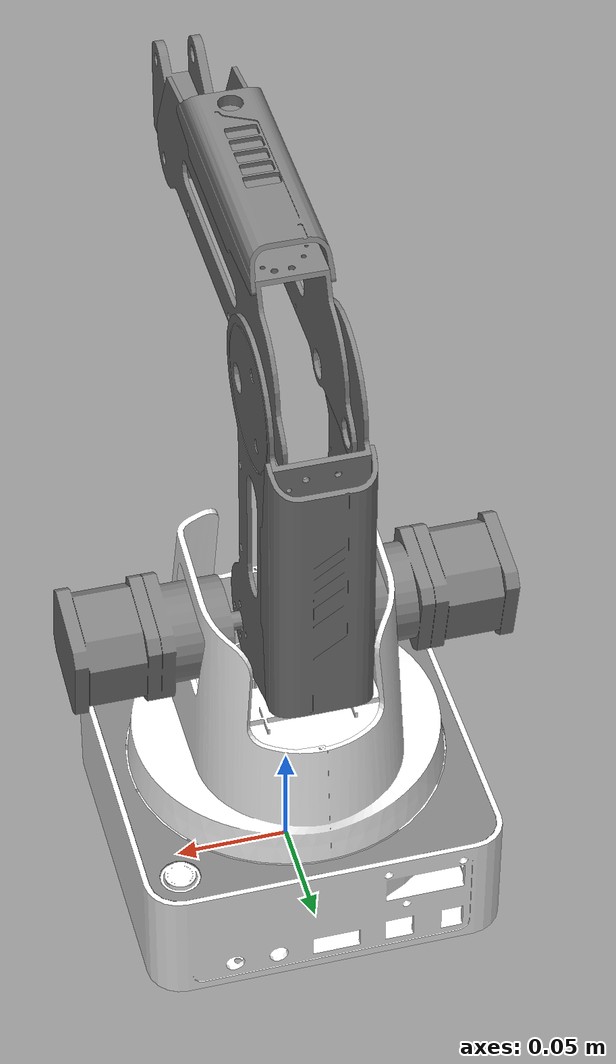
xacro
<?xml version="1.0" encoding="utf-8"?>
<robot
  name="magician" xmlns:xacro="http://www.ros.org/wiki/xacro">

  <xacro:include filename="$(find magician_description)/urdf/magician.gazebo" />

  <xacro:include filename="$(find magician_description)/urdf/magician_transmission.xacro" />

  <xacro:property name="joint1_lower" value="-2.1816"/>
  <xacro:property name="joint1_upper" value="2.1816"/>
  <xacro:property name="joint2_lower" value="-0.35"/>
  <xacro:property name="joint2_upper" value="1.57"/>
  <xacro:property name="joint3_lower" value="-0.62"/>
  <xacro:property name="joint3_upper" value="1.57"/>
  <xacro:property name="joint_velocity" value="1.57"/> <!-- rad/s   ???? -->

  <link name="world"/>
  <joint
    name="world_joint"
    type="fixed">
    <origin
      xyz="0 0 0"
      rpy="0 0 0" />
    <parent
      link="world" />
    <child
      link="magician_base" />
    <axis
      xyz="0 0 0" />
  </joint>
  <link
    name="magician_base">
    <inertial>
      <origin
        xyz="-0.00035432 -0.00080566 0.023187"
        rpy="0 0 0" />
      <mass
        value="0.23009" />
      <inertia
        ixx="0.00065784"
        ixy="-4.8312E-06"
        ixz="1.2493E-06"
        iyy="0.00069673"
        iyz="4.3823E-07"
        izz="0.0012945" />
    </inertial>
    <visual>
      <origin
        xyz="0 0 0"
        rpy="0 0 0" />
      <geometry>
        <mesh
          filename="package://magician_description/meshes/magician_base.STL" />
      </geometry>
      <material
        name="">
        <color
          rgba="1 1 1 1" />
      </material>
    </visual>
    <collision>
      <origin
        xyz="0 0 0"
        rpy="0 0 0" />
      <geometry>
        <mesh
          filename="package://magician_description/meshes/magician_base.STL" />
      </geometry>
    </collision>
  </link>
  <link
    name="magician_link1">
    <inertial>
      <origin
        xyz="0.00024809 -0.00074864 0.040762"
        rpy="0 0 0" />
      <mass
        value="0.081469" />
      <inertia
        ixx="0.00020859"
        ixy="8.163E-08"
        ixz="4.6298E-07"
        iyy="9.5838E-05"
        iyz="3.2246E-06"
        izz="0.00015246" />
    </inertial>
    <visual>
      <origin
        xyz="0 0 0"
        rpy="0 0 0" />
      <geometry>
        <mesh
          filename="package://magician_description/meshes/magician_link1.STL" />
      </geometry>
      <material
        name="">
        <color
          rgba="1 1 1 1" />
      </material>
    </visual>
    <collision>
      <origin
        xyz="0 0 0"
        rpy="0 0 0" />
      <geometry>
        <mesh
          filename="package://magician_description/meshes/magician_link1.STL" />
      </geometry>
    </collision>
  </link>
  <joint
    name="magician_joint1"
    type="revolute">
    <origin
      xyz="0 0 0.0569"
      rpy="0 0 0" />
    <parent
      link="magician_base" />
    <child
      link="magician_link1" />
    <axis
      xyz="0 0 1" />
    <limit
      lower="${joint1_lower}"
      upper="${joint1_upper}"
      effort="6"
      velocity="${joint_velocity}" />
  </joint>
  <link
    name="magician_link2">
    <inertial>
      <origin
        xyz="-0.076276 0.029436 2.1815E-06"
        rpy="0 0 0" />
      <mass
        value="0.047726" />
      <inertia
        ixx="3.5818E-05"
        ixy="-4.4023E-06"
        ixz="-7.1903E-09"
        iyy="0.00014556"
        iyz="2.3353E-09"
        izz="0.00015167" />
    </inertial>
    <visual>
      <origin
        xyz="0 0 0"
        rpy="0 0 0" />
      <geometry>
        <mesh
          filename="package://magician_description/meshes/magician_link2.STL" />
      </geometry>
      <material
        name="">
        <color
          rgba="0.501960784313725 0.501960784313725 0.501960784313725 1" />
      </material>
    </visual>
    <collision>
      <origin
        xyz="0 0 0"
        rpy="0 0 0" />
      <geometry>
        <mesh
          filename="package://magician_description/meshes/magician_link2.STL" />
      </geometry>
    </collision>
  </link>
  <joint
    name="magician_joint2"
    type="revolute">
    <origin
      xyz="0 0 0.0821"
      rpy="0 1.5707963267948966 0" />
    <parent
      link="magician_link1" />
    <child
      link="magician_link2" />
    <axis
      xyz="0 0 1" />
    <limit
      lower="${joint2_lower}"
      upper="${joint2_upper}"
      effort="6"
      velocity="${joint_velocity}" />
  </joint>
  <link
    name="magician_link3">
    <inertial>
      <origin
        xyz="0.029209 -0.054163 -8.4342E-05"
        rpy="0 0 0" />
      <mass
        value="0.042983" />
      <inertia
        ixx="0.00013733"
        ixy="-9.7605E-08"
        ixz="-1.1091E-07"
        iyy="2.3432E-05"
        iyz="3.5599E-07"
        izz="0.00014558" />
    </inertial>
    <visual>
      <origin
        xyz="0 0 0"
        rpy="0 0 0" />
      <geometry>
        <mesh
          filename="package://magician_description/meshes/magician_link3.STL" />
      </geometry>
      <material
        name="">
        <color
          rgba="0.501960784313725 0.501960784313725 0.501960784313725 1" />
      </material>
    </visual>
    <collision>
      <origin
        xyz="0 0 0"
        rpy="0 0 0" />
      <geometry>
        <mesh
          filename="package://magician_description/meshes/magician_link3.STL" />
      </geometry>
    </collision>
  </link>
  <joint
    name="magician_fake_joint1"
    type="revolute">
    <origin
      xyz="-0.135 0 0"
      rpy="-3.1415926535897932 0 -3.1415926535897932" />
    <parent
      link="magician_link2" />
    <child
      link="magician_fake_link" />
    <axis
      xyz="0 0 -1" />
    <limit
      lower="${-1*joint2_upper}"
      upper="${-1*joint2_lower}"
      effort="6"
      velocity="${joint_velocity}" />
    <mimic
      joint="magician_joint2"
      multiplier="-1"
      offset="0"/>
  </joint>
  <link name="magician_fake_link">
    <inertial>
      <origin
        xyz="0 0 0"
        rpy="0 0 0" />
      <mass
        value="0.025" />
      <inertia
        ixx="2.5E-4"
        ixy="0"
        ixz="0"
        iyy="2.5E-4"
        iyz="0"
        izz="2.5E-4" />
    </inertial>
  </link>
  <joint
    name="magician_joint3"
    type="revolute">
    <origin
      xyz="0 0 0"
      rpy="0 0 0" />
    <parent
      link="magician_fake_link" />
    <child
      link="magician_link3" />
    <axis
      xyz="0 0 -1" />
    <limit
      lower="${joint3_lower}"
      upper="${joint3_upper}"
      effort="6"
      velocity="${joint_velocity}" />
  </joint>
  <link
    name="magician_link4">
    <inertial>
      <origin
        xyz="-0.019694 0.0034659 0.0001155"
        rpy="0 0 0" />
      <mass
        value="0.020564" />
      <inertia
        ixx="3.7203E-06"
        ixy="7.6009E-07"
        ixz="3.146E-08"
        iyy="4.5639E-06"
        iyz="-5.7432E-08"
        izz="6.427E-06" />
    </inertial>
    <visual>
      <origin
        xyz="0 0 0"
        rpy="0 0 0" />
      <geometry>
        <mesh
          filename="package://magician_description/meshes/magician_link4.STL" />
      </geometry>
      <material
        name="">
        <color
          rgba="0.501960784313725 0.501960784313725 0.501960784313725 1" />
      </material>
    </visual>
    <collision>
      <origin
        xyz="0 0 0"
        rpy="0 0 0" />
      <geometry>
        <mesh
          filename="package://magician_description/meshes/magician_link4.STL" />
      </geometry>
    </collision>
  </link>
  <joint
    name="magician_fake_joint2"
    type="revolute">
    <origin
      xyz="0 -0.147 0"
      rpy="3.1415926535897932 0 1.5707963267948966" />
    <parent
      link="magician_link3" />
    <child
      link="magician_link4" />
    <axis
      xyz="0 0 1" />
    <limit
      lower="${-1*joint3_upper}"
      upper="${-1*joint3_lower}"
      effort="6"
      velocity="${joint_velocity}" />
    <mimic
      joint="magician_joint3"
      multiplier="-1"
      offset="0"/>
  </joint>
  <link name="magician_arm_end"/>
  <joint
    name="magician_link4_joint1"
    type="fixed">
    <origin
      xyz="0 0 0"
      rpy="-1.5707963267948966 3.1415926535897932 0" />
    <parent
      link="magician_link4" />
    <child
      link="magician_arm_end" />
  </joint>
  <link
    name="magician_link3_surface">
    <inertial>
      <origin
        xyz="0.059385 -0.050176 -2.6308E-06"
        rpy="0 0 0" />
      <mass
        value="0.015005" />
      <inertia
        ixx="1.8842E-05"
        ixy="-3.9211E-07"
        ixz="4.9615E-10"
        iyy="3.6097E-06"
        iyz="-1.2797E-09"
        izz="1.6901E-05" />
    </inertial>
    <visual>
      <origin
        xyz="0 0 0"
        rpy="0 0 0" />
      <geometry>
        <mesh
          filename="package://magician_description/meshes/magician_link3_surface.STL" />
      </geometry>
      <material
        name="">
        <color
          rgba="0.501960784313725 0.501960784313725 0.501960784313725 1" />
      </material>
    </visual>
    <collision>
      <origin
        xyz="0 0 0"
        rpy="0 0 0" />
      <geometry>
        <mesh
          filename="package://magician_description/meshes/magician_link3_surface.STL" />
      </geometry>
    </collision>
  </link>
  <joint
    name="magician_link3_joint1"
    type="fixed">
    <origin
      xyz="0 0 0"
      rpy="0 0 0" />
    <parent
      link="magician_link3" />
    <child
      link="magician_link3_surface" />
    <axis
      xyz="0 0 0" />
  </joint>
  <link
    name="magician_link2_surface">
    <inertial>
      <origin
        xyz="-0.066726 0.060698 5.5359E-07"
        rpy="0 0 0" />
      <mass
        value="0.018846" />
      <inertia
        ixx="5.9574E-06"
        ixy="-5.1053E-08"
        ixz="3.3782E-09"
        iyy="2.8034E-05"
        iyz="-1.6336E-11"
        izz="2.3816E-05" />
    </inertial>
    <visual>
      <origin
        xyz="0 0 0"
        rpy="0 0 0" />
      <geometry>
        <mesh
          filename="package://magician_description/meshes/magician_link2_surface.STL" />
      </geometry>
      <material
        name="">
        <color
          rgba="0.501960784313725 0.501960784313725 0.501960784313725 1" />
      </material>
    </visual>
    <collision>
      <origin
        xyz="0 0 0"
        rpy="0 0 0" />
      <geometry>
        <mesh
          filename="package://magician_description/meshes/magician_link2_surface.STL" />
      </geometry>
    </collision>
  </link>
  <joint
    name="magician_link2_joint1"
    type="fixed">
    <origin
      xyz="0 0 0"
      rpy="0 0 0" />
    <parent
      link="magician_link2" />
    <child
      link="magician_link2_surface" />
    <axis
      xyz="0 0 0" />
  </joint>
  <link
    name="magician_servos">
    <inertial>
      <origin
        xyz="-3.3282E-06 0 0.0821"
        rpy="0 0 0" />
      <mass
        value="0.21777" />
      <inertia
        ixx="5.4372E-05"
        ixy="-1.467E-18"
        ixz="-1.6192E-19"
        iyy="0.00011754"
        iyz="7.4188E-21"
        izz="0.00011754" />
    </inertial>
    <visual>
      <origin
        xyz="0 0 0"
        rpy="0 0 0" />
      <geometry>
        <mesh
          filename="package://magician_description/meshes/magician_servos.STL" />
      </geometry>
      <material
        name="">
        <color
          rgba="0.501960784313725 0.501960784313725 0.501960784313725 1" />
      </material>
    </visual>
    <collision>
      <origin
        xyz="0 0 0"
        rpy="0 0 0" />
      <geometry>
        <mesh
          filename="package://magician_description/meshes/magician_servos.STL" />
      </geometry>
    </collision>
  </link>
  <joint
    name="magician_link1_joint1"
    type="fixed">
    <origin
      xyz="0 0 0"
      rpy="0 0 0" />
    <parent
      link="magician_link1" />
    <child
      link="magician_servos" />
    <axis
      xyz="0 0 0" />
  </joint>
  <link
    name="magician_base_surface">
    <inertial>
      <origin
        xyz="0 0 0"
        rpy="0 0 0" />
      <mass
        value="0" />
      <inertia
        ixx="0"
        ixy="0"
        ixz="0"
        iyy="0"
        iyz="0"
        izz="0" />
    </inertial>
    <visual>
      <origin
        xyz="0 0 0"
        rpy="0 0 0" />
      <geometry>
        <mesh
          filename="package://magician_description/meshes/magician_base_surface.STL" />
      </geometry>
      <material
        name="">
        <color
          rgba="0.501960784313725 0.501960784313725 0.501960784313725 1" />
      </material>
    </visual>
    <collision>
      <origin
        xyz="0 0 0"
        rpy="0 0 0" />
      <geometry>
        <mesh
          filename="package://magician_description/meshes/magician_base_surface.STL" />
      </geometry>
    </collision>
  </link>
  <joint
    name="magician_base_joint1"
    type="fixed">
    <origin
      xyz="0 0 0"
      rpy="0 0 0" />
    <parent
      link="magician_base" />
    <child
      link="magician_base_surface" />
    <axis
      xyz="0 0 0" />
  </joint>
  <link name="magician_end_turnplate"/>
  <joint
    name="magician_fake_joint3"
    type="revolute">
    <origin
      xyz="0 0 0"
      rpy="0 0 0" />
    <parent
      link="magician_arm_end" />
    <child
      link="magician_end_turnplate" />
    <axis
      xyz="0 0 1" />
    <limit
      lower="${-1*joint1_upper}"
      upper="${-1*joint1_lower}"
      effort="6"
      velocity="${joint_velocity}" />
    <mimic
      joint="magician_joint1"
      multiplier="-1"
      offset="0"/>
  </joint>
  <link name="magician_end_link"/>
  <joint
    name="magician_end_turnplate_joint1"
    type="fixed">
    <origin
      xyz="0 0 0"
      rpy="0 0 0" />
    <parent
      link="magician_end_turnplate" />
    <child
      link="magician_end_link" />
    <axis
      xyz="0 0 0" />
  </joint>
  <link name="magician_end_effector"/>
  <joint
    name="magician_end_link_joint1"
    type="fixed">
    <origin
      xyz="0 0 0"
      rpy="0 0 0" />
    <parent
      link="magician_end_link" />
    <child
      link="magician_end_effector" />
    <axis
      xyz="0 0 0" />
  </joint>
  <link name="magician_tool0"/>
  <joint
    name="magician_tool0_joint"
    type="fixed">
    <origin
      xyz="0.041 0.0 0.0"
      rpy="0 0 0" />
    <parent
      link="magician_arm_end" />
    <child
      link="magician_tool0" />
  </joint>
</robot>
